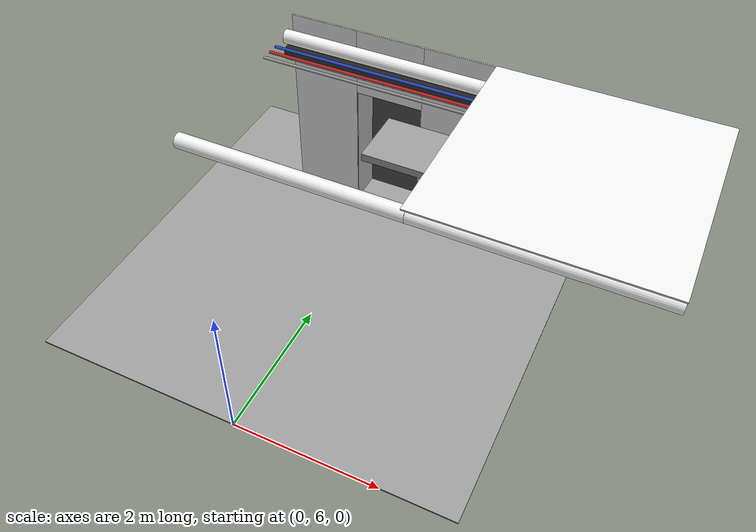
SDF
<sdf version="1.6">
 <world name="default">
  <model name="ceiling_1_0_3_1_2">
   <pose>1.0 9.0 2.55 0.0 0.0 1.57</pose>
   <link name="link_1">
    <visual name="visual">
     <geometry><box><size>0.8 1 0.1</size></box></geometry>
     <material>
      <script><uri>file://media/materials/scripts/gazebo.material</uri><name>Gazebo/Grey</name></script>
     </material>
    </visual>
    <collision name="collision"><geometry><box><size>0.8 1 0.1</size></box></geometry></collision>
   </link>
   <static>1</static>
  </model>
  <model name="white_pipe_left_1_0_3_0_2">
   <static>1</static>
   <pose>0.0 9.0 2.76 0.0 0.0 1.57</pose>
   <link name="link_0">
    <visual name="visual">
     <pose>-1.3 0 0 1.57 0 0</pose>
     <geometry><cylinder><radius>0.1</radius><length>3.0</length></cylinder></geometry>
     <material>
      <script><uri>file://media/materials/scripts/gazebo.material</uri><name>Gazebo/White</name></script>
     </material>
    </visual>
    <collision name="collision">
     <pose>-1.3 0 0 1.57 0 0</pose>
     <geometry><cylinder><radius>0.1</radius><length>3.0</length></cylinder></geometry>
    </collision>
   </link>
  </model>
  <model name="white_pipe_right_1_0_3_0_2">
   <static>1</static>
   <pose>0.0 9.0 2.76 0.0 0.0 1.57</pose>
   <link name="link_0">
    <visual name="visual">
     <pose>1.3 0 0 1.57 0 0</pose>
     <geometry><cylinder><radius>0.1</radius><length>3.0</length></cylinder></geometry>
     <material>
      <script><uri>file://media/materials/scripts/gazebo.material</uri><name>Gazebo/White</name></script>
     </material>
    </visual>
    <collision name="collision">
     <pose>1.3 0 0 1.57 0 0</pose>
     <geometry><cylinder><radius>0.1</radius><length>3.0</length></cylinder></geometry>
    </collision>
   </link>
  </model>
  <model name="black_pipe_right_1_0_3_0_2">
   <static>1</static>
   <pose>0.0 9.0 2.76 0.0 0.0 1.57</pose>
   <link name="link_0">
    <visual name="visual">
     <pose>1.3 0 -0.25 1.57 0 0</pose>
     <geometry><cylinder><radius>0.1</radius><length>3.0</length></cylinder></geometry>
     <material>
      <script><uri>file://media/materials/scripts/gazebo.material</uri><name>Gazebo/Black</name></script>
     </material>
    </visual>
    <collision name="collision">
     <pose>1.3 0 -0.25 1.57 0 0</pose>
     <geometry><cylinder><radius>0.1</radius><length>3.0</length></cylinder></geometry>
    </collision>
   </link>
  </model>
  <model name="grey_pipe_right_1_0_3_0_2">
   <static>1</static>
   <pose>0.0 9.0 2.76 0.0 0.0 1.57</pose>
   <link name="link_0">
    <visual name="visual">
     <pose>0.7 0 0 1.57 0 0</pose>
     <geometry><cylinder><radius>0.02</radius><length>3.0</length></cylinder></geometry>
     <material>
      <script><uri>file://media/materials/scripts/gazebo.material</uri><name>Gazebo/Grey</name></script>
     </material>
    </visual>
    <collision name="collision">
     <pose>0.7 0 0 1.57 0 0</pose>
     <geometry><cylinder><radius>0.02</radius><length>3.0</length></cylinder></geometry>
    </collision>
   </link>
  </model>
  <model name="red_pipe_right_1_0_3_0_2">
   <static>1</static>
   <pose>0.0 9.0 2.76 0.0 0.0 1.57</pose>
   <link name="link_0">
    <visual name="visual">
     <pose>0.85 0 0 1.57 0 0</pose>
     <geometry><cylinder><radius>0.02</radius><length>3.0</length></cylinder></geometry>
     <material>
      <script><uri>file://media/materials/scripts/gazebo.material</uri><name>Gazebo/Red</name></script>
     </material>
    </visual>
    <collision name="collision">
     <pose>0.85 0 0 1.57 0 0</pose>
     <geometry><cylinder><radius>0.02</radius><length>3.0</length></cylinder></geometry>
    </collision>
   </link>
  </model>
  <model name="blue_pipe_right_1_0_3_0_2">
   <static>1</static>
   <pose>0.0 9.0 2.76 0.0 0.0 1.57</pose>
   <link name="link_0">
    <visual name="visual">
     <pose>1 0 0 1.57 0 0</pose>
     <geometry><cylinder><radius>0.02</radius><length>3.0</length></cylinder></geometry>
     <material>
      <script><uri>file://media/materials/scripts/gazebo.material</uri><name>Gazebo/Blue</name></script>
     </material>
    </visual>
    <collision name="collision">
     <pose>1 0 0 1.57 0 0</pose>
     <geometry><cylinder><radius>0.02</radius><length>3.0</length></cylinder></geometry>
    </collision>
   </link>
  </model>
  <model name="wall_bottom_0_3_0_2">
   <static>1</static>
   <pose>0.0 9.0 0.0 0.0 0.0 0.0</pose>
   <link name="link">
    <collision name="collision"><geometry><box><size>6.0 6.0 0.02</size></box></geometry></collision>
    <visual name="visual">
     <material>
      <script><name>Gazebo/Grey</name><uri>file://media/materials/scripts/gazebo.material</uri></script>
     </material>
     <geometry><box><size>6.0 6.0 0.02</size></box></geometry>
    </visual>
   </link>
  </model>
  <model name="wall_front_front_left_0_3_0_2">
   <static>1</static>
   <pose>1.0 10.5 1.5 0.0 0.0 0.0</pose>
   <link name="link">
    <collision name="collision"><geometry><box><size>1.0 0.02 3.0</size></box></geometry></collision>
    <visual name="visual">
     <material>
      <script><name>Gazebo/White</name><uri>file://media/materials/scripts/gazebo.material</uri></script>
     </material>
     <geometry><box><size>1.0 0.02 3.0</size></box></geometry>
    </visual>
   </link>
  </model>
  <model name="wall_front_front_right_0_3_0_2">
   <static>1</static>
   <pose>-1.0 10.5 1.5 0.0 0.0 0.0</pose>
   <link name="link">
    <collision name="collision"><geometry><box><size>1.0 0.02 3.0</size></box></geometry></collision>
    <visual name="visual">
     <material>
      <script><name>Gazebo/White</name><uri>file://media/materials/scripts/gazebo.material</uri></script>
     </material>
     <geometry><box><size>1.0 0.02 3.0</size></box></geometry>
    </visual>
   </link>
  </model>
  <model name="wall_front_front_up_0_3_0_2">
   <static>1</static>
   <pose>0.0 10.5 2.5 0.0 0.0 0.0</pose>
   <link name="link">
    <collision name="collision"><geometry><box><size>1.0 0.02 1.0</size></box></geometry></collision>
    <visual name="visual">
     <material>
      <script><name>Gazebo/White</name><uri>file://media/materials/scripts/gazebo.material</uri></script>
     </material>
     <geometry><box><size>1.0 0.02 1.0</size></box></geometry>
    </visual>
   </link>
  </model>
  <model name="wall_front_inside_back_0_3_0_2">
   <static>1</static>
   <pose>0.0 11.0 1.0 0.0 0.0 0.0</pose>
   <link name="link">
    <collision name="collision"><geometry><box><size>1 0.02 2</size></box></geometry></collision>
    <visual name="visual">
     <material>
      <script><name>Gazebo/DarkGrey</name><uri>file://media/materials/scripts/gazebo.material</uri></script>
     </material>
     <geometry><box><size>1 0.02 2</size></box></geometry>
    </visual>
   </link>
  </model>
  <model name="wall_front_inside_left_0_3_0_2">
   <static>1</static>
   <pose>-0.5 10.75 1.0 0.0 0.0 1.57</pose>
   <link name="link">
    <collision name="collision"><geometry><box><size>0.5 0.02 2</size></box></geometry></collision>
    <visual name="visual">
     <material>
      <script><name>Gazebo/White</name><uri>file://media/materials/scripts/gazebo.material</uri></script>
     </material>
     <geometry><box><size>0.5 0.02 2</size></box></geometry>
    </visual>
   </link>
  </model>
  <model name="wall_front_inside_right_0_3_0_2">
   <static>1</static>
   <pose>0.5 10.75 1.0 0.0 0.0 1.57</pose>
   <link name="link">
    <collision name="collision"><geometry><box><size>0.5 0.02 2</size></box></geometry></collision>
    <visual name="visual">
     <material>
      <script><name>Gazebo/White</name><uri>file://media/materials/scripts/gazebo.material</uri></script>
     </material>
     <geometry><box><size>0.5 0.02 2</size></box></geometry>
    </visual>
   </link>
  </model>
  <model name="wall_front_inside_top_0_3_0_2">
   <static>1</static>
   <pose>0.0 10.75 2.0 1.57 0.0 0.0</pose>
   <link name="link">
    <collision name="collision"><geometry><box><size>1 0.02 0.5</size></box></geometry></collision>
    <visual name="visual">
     <material>
      <script><name>Gazebo/White</name><uri>file://media/materials/scripts/gazebo.material</uri></script>
     </material>
     <geometry><box><size>1 0.02 0.5</size></box></geometry>
    </visual>
   </link>
  </model>
  <model name="wall_left_1_3_0_2">
   <static>1</static>
   <pose>3.0 10.5 1.5 0.0 0.0 0.0</pose>
   <link name="link">
    <collision name="collision"><geometry><box><size>3.0 0.02 3.0</size></box></geometry></collision>
    <visual name="visual">
     <material>
      <script><name>Gazebo/White</name><uri>file://media/materials/scripts/gazebo.material</uri></script>
     </material>
     <geometry><box><size>3.0 0.02 3.0</size></box></geometry>
    </visual>
   </link>
  </model>
  <model name="wall_top_1_3_0_2">
   <static>1</static>
   <pose>3.0 9.0 3.0 1.57 0.0 -1.57</pose>
   <link name="link">
    <collision name="collision"><geometry><box><size>3.0 0.02 3.0</size></box></geometry></collision>
    <visual name="visual">
     <material>
      <script><name>Gazebo/White</name><uri>file://media/materials/scripts/gazebo.material</uri></script>
     </material>
     <geometry><box><size>3.0 0.02 3.0</size></box></geometry>
    </visual>
   </link>
  </model>
  <model name="ceiling_1_1_3_0_2">
   <pose>2.0 9.0 2.55 0.0 0.0 -1.57</pose>
   <link name="link_1">
    <visual name="visual">
     <geometry><box><size>0.8 1 0.1</size></box></geometry>
     <material>
      <script><uri>file://media/materials/scripts/gazebo.material</uri><name>Gazebo/Grey</name></script>
     </material>
    </visual>
    <collision name="collision"><geometry><box><size>0.8 1 0.1</size></box></geometry></collision>
   </link>
   <static>1</static>
  </model>
  <model name="white_pipe_left_1_3_0_2">
   <static>1</static>
   <pose>3.0 9.0 2.76 0.0 0.0 -1.57</pose>
   <link name="link_0">
    <visual name="visual">
     <pose>-1.3 0 0 1.57 0 0</pose>
     <geometry><cylinder><radius>0.1</radius><length>3.0</length></cylinder></geometry>
     <material>
      <script><uri>file://media/materials/scripts/gazebo.material</uri><name>Gazebo/White</name></script>
     </material>
    </visual>
    <collision name="collision">
     <pose>-1.3 0 0 1.57 0 0</pose>
     <geometry><cylinder><radius>0.1</radius><length>3.0</length></cylinder></geometry>
    </collision>
   </link>
  </model>
  <model name="white_pipe_right_1_3_0_2">
   <static>1</static>
   <pose>3.0 9.0 2.76 0.0 0.0 -1.57</pose>
   <link name="link_0">
    <visual name="visual">
     <pose>1.3 0 0 1.57 0 0</pose>
     <geometry><cylinder><radius>0.1</radius><length>3.0</length></cylinder></geometry>
     <material>
      <script><uri>file://media/materials/scripts/gazebo.material</uri><name>Gazebo/White</name></script>
     </material>
    </visual>
    <collision name="collision">
     <pose>1.3 0 0 1.57 0 0</pose>
     <geometry><cylinder><radius>0.1</radius><length>3.0</length></cylinder></geometry>
    </collision>
   </link>
  </model>
 </world>
</sdf>
